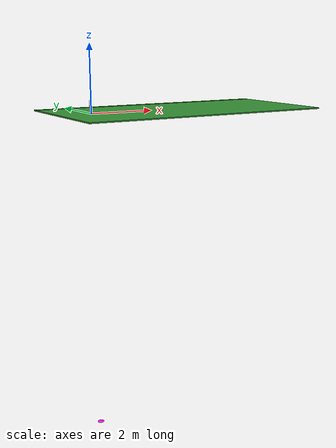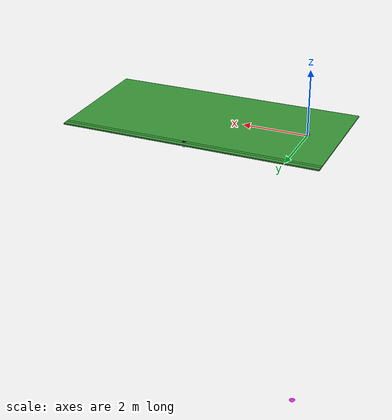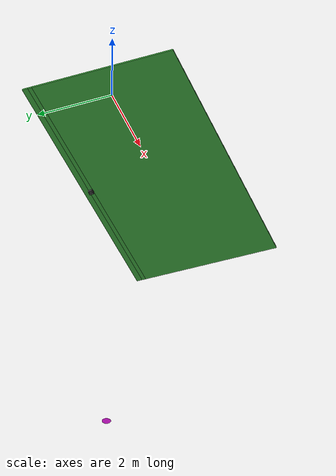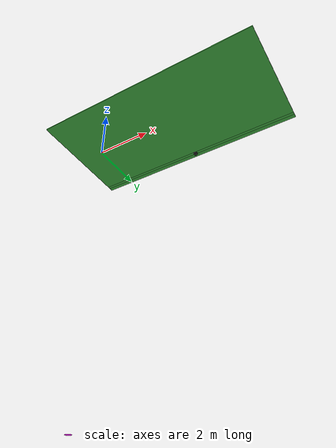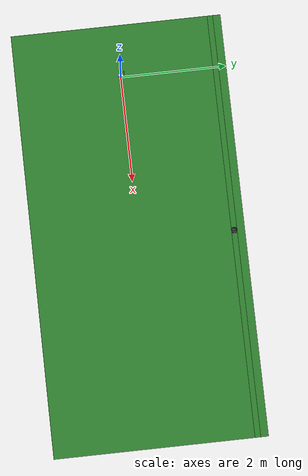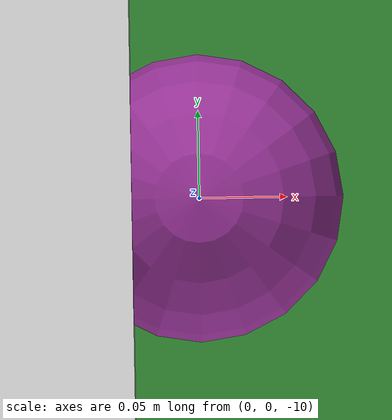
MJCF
<mujoco model="golf_world">
  <compiler angle="radian"/>

  <option integrator="RK4" cone="elliptic"/>
  <option integrator="RK4" cone="elliptic"/>

  <default>
    <geom condim="6" friction="0.30831 1.83703e-05 0.00121743" solref="0.002" solimp="0.95 0.99"/>
  </default>

  <asset>
    <texture type="2d" colorspace="auto" name="checks" builtin="checker" mark="cross" rgb1="1 1 1" rgb2="0 0 0" markrgb="1 0 0" width="512" height="512"/>
    <material name="green_mat" rgba="0.2 0.55 0.2 1"/>
    <material name="green_mat_out" rgba="0.5 0.5 0.5 1"/>
    <material name="green_mat_out1" rgba="0 0.5 0.5 1"/>
    <material name="green_mat_out2" rgba="0.5 0 0.5 1"/>
    <material name="cup_mat" rgba="0.3 0.3 0.3 1"/>
    <material name="ball_mat" texture="checks"/>
    <material name="club_mat" rgba="0.9 0.9 0.9 1"/>
    <material name="disc_mat" rgba="0.9 0.1 0.9 1"/>
    <mesh name="cup_w00" content_type="model/obj" file="assets/golf_hole_obj/golf_hole_obj_collision_0.obj" scale="0.01 0.01 0.01"/>
    <mesh name="cup_w01" content_type="model/obj" file="assets/golf_hole_obj/golf_hole_obj_collision_1.obj" scale="0.01 0.01 0.01"/>
    <mesh name="cup_w02" content_type="model/obj" file="assets/golf_hole_obj/golf_hole_obj_collision_2.obj" scale="0.01 0.01 0.01"/>
    <mesh name="cup_w03" content_type="model/obj" file="assets/golf_hole_obj/golf_hole_obj_collision_3.obj" scale="0.01 0.01 0.01"/>
    <mesh name="cup_w04" content_type="model/obj" file="assets/golf_hole_obj/golf_hole_obj_collision_4.obj" scale="0.01 0.01 0.01"/>
    <mesh name="cup_w05" content_type="model/obj" file="assets/golf_hole_obj/golf_hole_obj_collision_5.obj" scale="0.01 0.01 0.01"/>
    <mesh name="cup_w06" content_type="model/obj" file="assets/golf_hole_obj/golf_hole_obj_collision_6.obj" scale="0.01 0.01 0.01"/>
    <mesh name="cup_w07" content_type="model/obj" file="assets/golf_hole_obj/golf_hole_obj_collision_7.obj" scale="0.01 0.01 0.01"/>
    <mesh name="cup_w08" content_type="model/obj" file="assets/golf_hole_obj/golf_hole_obj_collision_8.obj" scale="0.01 0.01 0.01"/>
    <mesh name="cup_w09" content_type="model/obj" file="assets/golf_hole_obj/golf_hole_obj_collision_9.obj" scale="0.01 0.01 0.01"/>
    <mesh name="cup_w10" content_type="model/obj" file="assets/golf_hole_obj/golf_hole_obj_collision_10.obj" scale="0.01 0.01 0.01"/>
    <mesh name="cup_w11" content_type="model/obj" file="assets/golf_hole_obj/golf_hole_obj_collision_11.obj" scale="0.01 0.01 0.01"/>
    <mesh name="cup_w12" content_type="model/obj" file="assets/golf_hole_obj/golf_hole_obj_collision_12.obj" scale="0.01 0.01 0.01"/>
    <mesh name="cup_w13" content_type="model/obj" file="assets/golf_hole_obj/golf_hole_obj_collision_13.obj" scale="0.01 0.01 0.01"/>
    <mesh name="cup_w14" content_type="model/obj" file="assets/golf_hole_obj/golf_hole_obj_collision_14.obj" scale="0.01 0.01 0.01"/>
    <mesh name="cup_w15" content_type="model/obj" file="assets/golf_hole_obj/golf_hole_obj_collision_15.obj" scale="0.01 0.01 0.01"/>
    <mesh name="cup_w16" content_type="model/obj" file="assets/golf_hole_obj/golf_hole_obj_collision_16.obj" scale="0.01 0.01 0.01"/>
    <mesh name="cup_w17" content_type="model/obj" file="assets/golf_hole_obj/golf_hole_obj_collision_17.obj" scale="0.01 0.01 0.01"/>
    <mesh name="cup_w18" content_type="model/obj" file="assets/golf_hole_obj/golf_hole_obj_collision_18.obj" scale="0.01 0.01 0.01"/>
    <mesh name="cup_w19" content_type="model/obj" file="assets/golf_hole_obj/golf_hole_obj_collision_19.obj" scale="0.01 0.01 0.01"/>
    <mesh name="cup_w20" content_type="model/obj" file="assets/golf_hole_obj/golf_hole_obj_collision_20.obj" scale="0.01 0.01 0.01"/>
    <mesh name="cup_w21" content_type="model/obj" file="assets/golf_hole_obj/golf_hole_obj_collision_21.obj" scale="0.01 0.01 0.01"/>
    <mesh name="cup_w22" content_type="model/obj" file="assets/golf_hole_obj/golf_hole_obj_collision_22.obj" scale="0.01 0.01 0.01"/>
    <mesh name="cup_w23" content_type="model/obj" file="assets/golf_hole_obj/golf_hole_obj_collision_23.obj" scale="0.01 0.01 0.01"/>
    <mesh name="cup_w24" content_type="model/obj" file="assets/golf_hole_obj/golf_hole_obj_collision_24.obj" scale="0.01 0.01 0.01"/>
    <mesh name="cup_w25" content_type="model/obj" file="assets/golf_hole_obj/golf_hole_obj_collision_25.obj" scale="0.01 0.01 0.01"/>
    <mesh name="cup_w26" content_type="model/obj" file="assets/golf_hole_obj/golf_hole_obj_collision_26.obj" scale="0.01 0.01 0.01"/>
    <mesh name="disc_obs" content_type="model/stl" file="assets/disc_obstacle.stl" scale="0.001 0.001 0.001"/>
    <mesh name="cup_w00" content_type="model/obj" file="assets/golf_hole_obj/golf_hole_obj_collision_0.obj" scale="0.01 0.01 0.01"/>
    <mesh name="cup_w01" content_type="model/obj" file="assets/golf_hole_obj/golf_hole_obj_collision_1.obj" scale="0.01 0.01 0.01"/>
    <mesh name="cup_w02" content_type="model/obj" file="assets/golf_hole_obj/golf_hole_obj_collision_2.obj" scale="0.01 0.01 0.01"/>
    <mesh name="cup_w03" content_type="model/obj" file="assets/golf_hole_obj/golf_hole_obj_collision_3.obj" scale="0.01 0.01 0.01"/>
    <mesh name="cup_w04" content_type="model/obj" file="assets/golf_hole_obj/golf_hole_obj_collision_4.obj" scale="0.01 0.01 0.01"/>
    <mesh name="cup_w05" content_type="model/obj" file="assets/golf_hole_obj/golf_hole_obj_collision_5.obj" scale="0.01 0.01 0.01"/>
    <mesh name="cup_w06" content_type="model/obj" file="assets/golf_hole_obj/golf_hole_obj_collision_6.obj" scale="0.01 0.01 0.01"/>
    <mesh name="cup_w07" content_type="model/obj" file="assets/golf_hole_obj/golf_hole_obj_collision_7.obj" scale="0.01 0.01 0.01"/>
    <mesh name="cup_w08" content_type="model/obj" file="assets/golf_hole_obj/golf_hole_obj_collision_8.obj" scale="0.01 0.01 0.01"/>
    <mesh name="cup_w09" content_type="model/obj" file="assets/golf_hole_obj/golf_hole_obj_collision_9.obj" scale="0.01 0.01 0.01"/>
    <mesh name="cup_w10" content_type="model/obj" file="assets/golf_hole_obj/golf_hole_obj_collision_10.obj" scale="0.01 0.01 0.01"/>
    <mesh name="cup_w11" content_type="model/obj" file="assets/golf_hole_obj/golf_hole_obj_collision_11.obj" scale="0.01 0.01 0.01"/>
    <mesh name="cup_w12" content_type="model/obj" file="assets/golf_hole_obj/golf_hole_obj_collision_12.obj" scale="0.01 0.01 0.01"/>
    <mesh name="cup_w13" content_type="model/obj" file="assets/golf_hole_obj/golf_hole_obj_collision_13.obj" scale="0.01 0.01 0.01"/>
    <mesh name="cup_w14" content_type="model/obj" file="assets/golf_hole_obj/golf_hole_obj_collision_14.obj" scale="0.01 0.01 0.01"/>
    <mesh name="cup_w15" content_type="model/obj" file="assets/golf_hole_obj/golf_hole_obj_collision_15.obj" scale="0.01 0.01 0.01"/>
    <mesh name="cup_w16" content_type="model/obj" file="assets/golf_hole_obj/golf_hole_obj_collision_16.obj" scale="0.01 0.01 0.01"/>
    <mesh name="cup_w17" content_type="model/obj" file="assets/golf_hole_obj/golf_hole_obj_collision_17.obj" scale="0.01 0.01 0.01"/>
    <mesh name="cup_w18" content_type="model/obj" file="assets/golf_hole_obj/golf_hole_obj_collision_18.obj" scale="0.01 0.01 0.01"/>
    <mesh name="cup_w19" content_type="model/obj" file="assets/golf_hole_obj/golf_hole_obj_collision_19.obj" scale="0.01 0.01 0.01"/>
    <mesh name="cup_w20" content_type="model/obj" file="assets/golf_hole_obj/golf_hole_obj_collision_20.obj" scale="0.01 0.01 0.01"/>
    <mesh name="cup_w21" content_type="model/obj" file="assets/golf_hole_obj/golf_hole_obj_collision_21.obj" scale="0.01 0.01 0.01"/>
    <mesh name="cup_w22" content_type="model/obj" file="assets/golf_hole_obj/golf_hole_obj_collision_22.obj" scale="0.01 0.01 0.01"/>
    <mesh name="cup_w23" content_type="model/obj" file="assets/golf_hole_obj/golf_hole_obj_collision_23.obj" scale="0.01 0.01 0.01"/>
    <mesh name="cup_w24" content_type="model/obj" file="assets/golf_hole_obj/golf_hole_obj_collision_24.obj" scale="0.01 0.01 0.01"/>
    <mesh name="cup_w25" content_type="model/obj" file="assets/golf_hole_obj/golf_hole_obj_collision_25.obj" scale="0.01 0.01 0.01"/>
    <mesh name="cup_w26" content_type="model/obj" file="assets/golf_hole_obj/golf_hole_obj_collision_26.obj" scale="0.01 0.01 0.01"/>
    <mesh name="disc_obs" content_type="model/stl" file="assets/disc_obstacle.stl" scale="0.001 0.001 0.001"/>
  </asset>

  <worldbody>
    <geom name="green_plus_y" size="4 0.0735 0.02" pos="3 1.9265 -0.02" type="box" material="green_mat"/>
    <geom name="green_neg_y" size="4 1.8735 0.02" pos="3 -0.1265 -0.02" type="box" material="green_mat"/>
    <geom name="green_plus_x" size="1.9135 0.053 0.02" pos="5.0865 1.8 -0.02" type="box" material="green_mat"/>
    <geom name="green_neg_x" size="2.0335 0.053 0.02" pos="1.0335 1.8 -0.02" type="box" material="green_mat"/>
    <camera name="overview" pos="2 -3 1.5" quat="0.707107 0 0.707107 0"/>
    <body name="cup" pos="3.12 1.8 -0.110665">
      <geom type="mesh" material="cup_mat" mesh="cup_w00"/>
      <geom type="mesh" material="cup_mat" mesh="cup_w01"/>
      <geom type="mesh" material="cup_mat" mesh="cup_w02"/>
      <geom type="mesh" material="cup_mat" mesh="cup_w03"/>
      <geom type="mesh" material="cup_mat" mesh="cup_w04"/>
      <geom type="mesh" material="cup_mat" mesh="cup_w05"/>
      <geom type="mesh" material="cup_mat" mesh="cup_w06"/>
      <geom type="mesh" material="cup_mat" mesh="cup_w07"/>
      <geom type="mesh" material="cup_mat" mesh="cup_w08"/>
      <geom type="mesh" material="cup_mat" mesh="cup_w09"/>
      <geom type="mesh" material="cup_mat" mesh="cup_w10"/>
      <geom type="mesh" material="cup_mat" mesh="cup_w11"/>
      <geom type="mesh" material="cup_mat" mesh="cup_w12"/>
      <geom type="mesh" material="cup_mat" mesh="cup_w13"/>
      <geom type="mesh" material="cup_mat" mesh="cup_w14"/>
      <geom type="mesh" material="cup_mat" mesh="cup_w15"/>
      <geom type="mesh" material="cup_mat" mesh="cup_w16"/>
      <geom type="mesh" material="cup_mat" mesh="cup_w17"/>
      <geom type="mesh" material="cup_mat" mesh="cup_w18"/>
      <geom type="mesh" material="cup_mat" mesh="cup_w19"/>
      <geom type="mesh" material="cup_mat" mesh="cup_w20"/>
      <geom type="mesh" material="cup_mat" mesh="cup_w21"/>
      <geom type="mesh" material="cup_mat" mesh="cup_w22"/>
      <geom type="mesh" material="cup_mat" mesh="cup_w23"/>
      <geom type="mesh" material="cup_mat" mesh="cup_w24"/>
      <geom type="mesh" material="cup_mat" mesh="cup_w25"/>
      <geom type="mesh" material="cup_mat" mesh="cup_w26"/>
      <site name="hole_center" pos="0 0 0" size="0.055" rgba="0 0 0 0.2"/>
    </body>
    <body name="disc0" pos="0 0 -10">
      <geom type="mesh" material="disc_mat" mesh="disc_obs"/>
    </body>
    <body name="disc1" pos="0 0 -10">
      <geom type="mesh" material="disc_mat" mesh="disc_obs"/>
    </body>
    <body name="disc2" pos="0 0 -10">
      <geom type="mesh" material="disc_mat" mesh="disc_obs"/>
    </body>
    <body name="disc3" pos="0 0 -10">
      <geom type="mesh" material="disc_mat" mesh="disc_obs"/>
    </body>
    <body name="disc4" pos="0 0 -10">
      <geom type="mesh" material="disc_mat" mesh="disc_obs"/>
    </body>
    <body name="ball" pos="0 0 0.021355">
      <joint name="ball_free" type="free"/>
      <geom name="ball_geom" size="0.02135" mass="0.04593" material="ball_mat" rgba="0.6 0.2 0.6 1"/>
    </body>
    <body name="club_mount">
      <joint name="mount_free" type="free" damping="20"/>
      <geom name="mount_inert" size="0.1" contype="0" conaffinity="0" mass="5" rgba="0 0 0 0"/>
      <body name="club_offset" pos="-0.03 0.05 0.37865">
        <body name="club_link">
          <joint name="club_hinge" pos="0 0 0" axis="0 1 0" limited="true" range="-1.0472 1.0472" damping="0.1"/>
          <geom name="club_shaft" size="0.01 0.18" pos="0 0 -0.18" type="capsule" mass="1" material="club_mat"/>
          <geom name="club_head" size="0.02 0.05 0.03" pos="0 -0.05 -0.36" type="box" mass="0.5" material="club_mat"/>
        </body>
      </body>
    </body>
  </worldbody>

  <contact>
    <pair geom1="ball_geom" geom2="club_head" solref="0.0184567 0.283149" solimp="0.783769 1.11639 0.00107829"/>
  </contact>

  <actuator>
    <general name="club_motor" joint="club_hinge" ctrlrange="-20 20" forcerange="-40 40" biastype="affine" gainprm="20" biasprm="0 0 -20"/>
  </actuator>
</mujoco>
